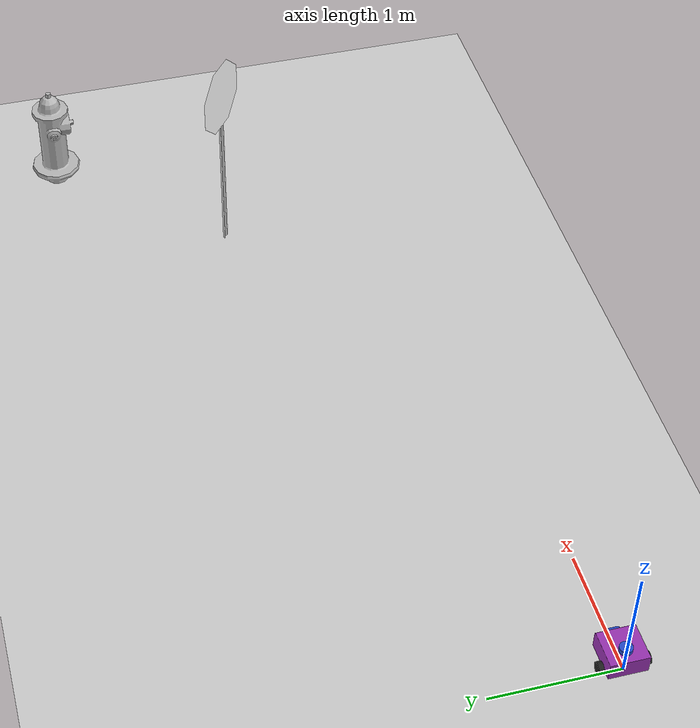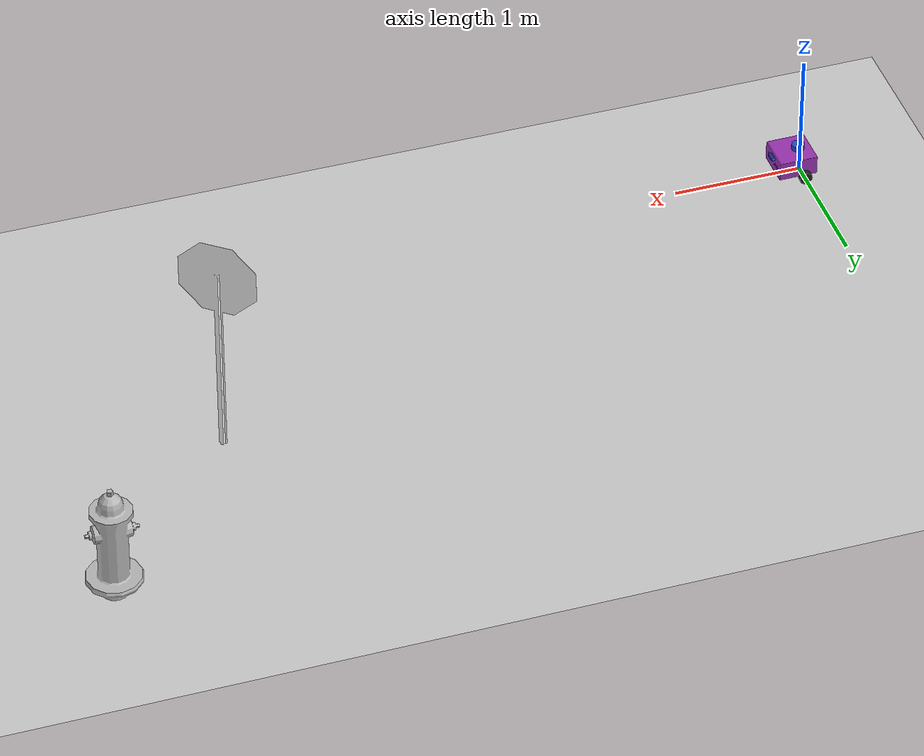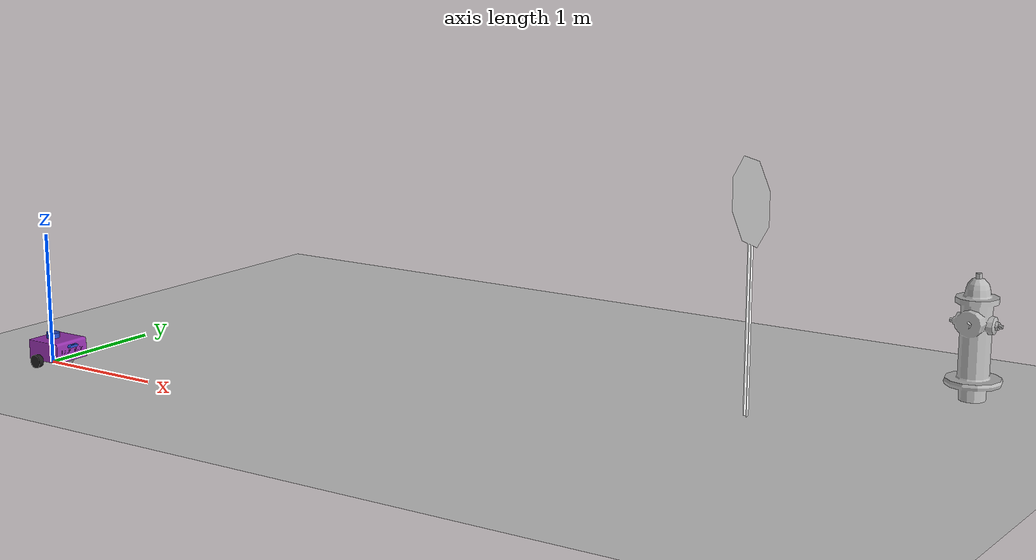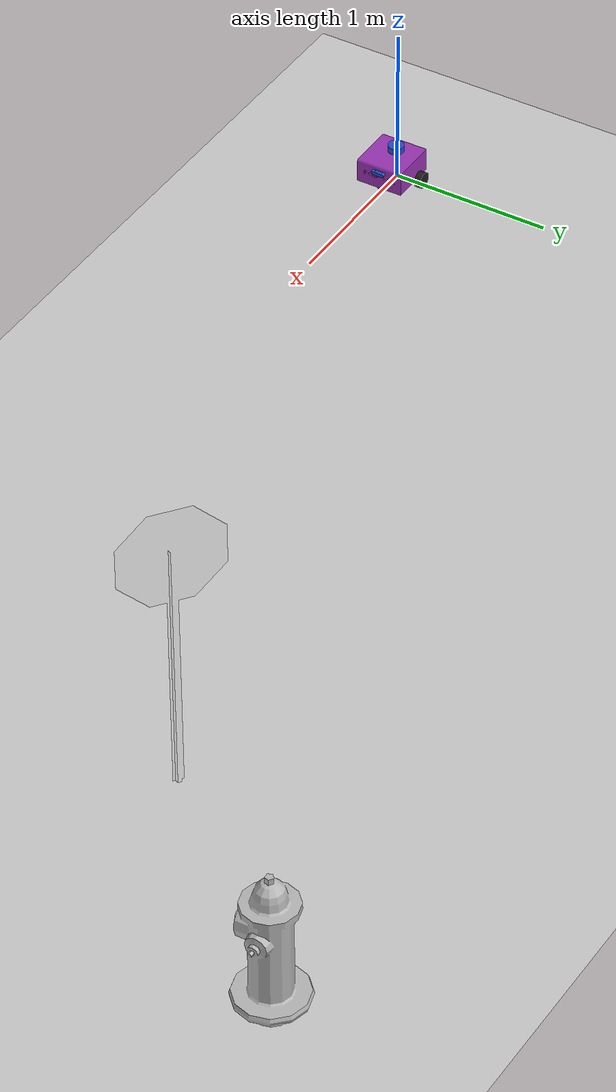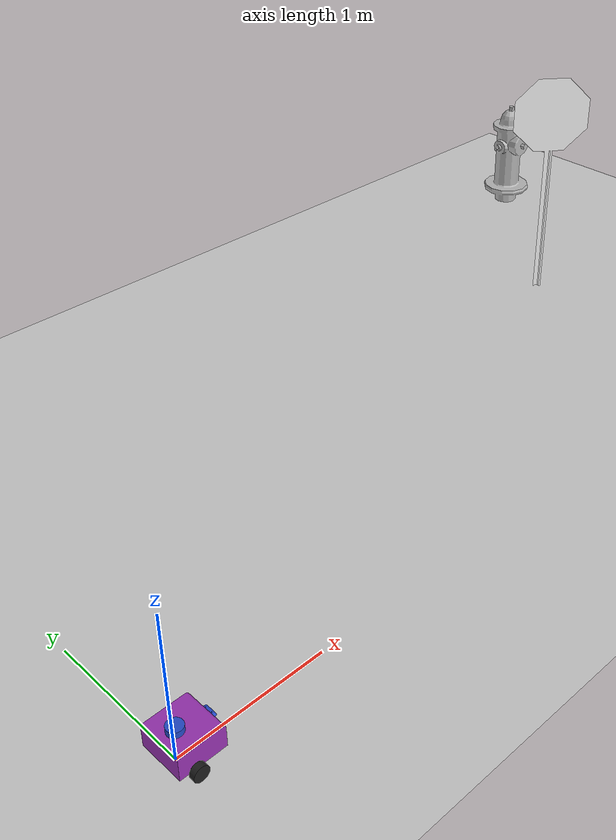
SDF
<sdf version="1.7">
 <world name="default">
  <light name="sun" type="directional">
   <pose>0 0 10 0 -0 0</pose>
   <diffuse>0.8 0.8 0.8 1</diffuse>
   <specular>0.2 0.2 0.2 1</specular>
   <attenuation>
    <range>1000</range>
    <constant>0.9</constant>
    <linear>0.01</linear>
    <quadratic>0.001</quadratic>
   </attenuation>
   <direction>-0.5 0.1 -0.9</direction>
   <spot><inner_angle>0</inner_angle><outer_angle>0</outer_angle><falloff>0</falloff></spot>
  </light>
  <model name="ground_plane">
   <static>1</static>
   <link name="link">
    <collision name="collision">
     <geometry><plane><normal>0 0 1</normal><size>100 100</size></plane></geometry>
     <surface>
      <contact><collide_bitmask>65535</collide_bitmask></contact>
      <friction><ode><mu>100</mu><mu2>50</mu2></ode></friction>
     </surface>
    </collision>
    <visual name="visual">
     <cast_shadows>0</cast_shadows>
     <geometry><plane><normal>0 0 1</normal><size>100 100</size></plane></geometry>
     <material>
      <script><uri>file://media/materials/scripts/gazebo.material</uri><name>Gazebo/Grey</name></script>
     </material>
    </visual>
   </link>
  </model>
  <gravity>0 0 -9.8</gravity>
  <magnetic_field>6e-06 2.3e-05 -4.2e-05</magnetic_field>
  <atmosphere type="adiabatic"/>
  <physics type="ode">
   <max_step_size>0.001</max_step_size>
   <real_time_factor>1</real_time_factor>
   <real_time_update_rate>1000</real_time_update_rate>
  </physics>
  <scene><ambient>0.4 0.4 0.4 1</ambient><background>0.7 0.7 0.7 1</background><shadows>1</shadows></scene>
  <spherical_coordinates>
   <surface_model>EARTH_WGS84</surface_model>
   <latitude_deg>0</latitude_deg>
   <longitude_deg>0</longitude_deg>
   <elevation>0</elevation>
   <heading_deg>0</heading_deg>
  </spherical_coordinates>
  <audio><device>default</device></audio>
  <model name="pathfinder">
   <link name="base_link">
    <inertial>
     <pose>0.075 0 0.080625 0 -0 0</pose>
     <mass>0.8</mass>
     <inertia>
      <ixx>0.00643823</ixx>
      <ixy>0</ixy>
      <ixz>0.0008625</ixz>
      <iyy>0.00949594</iyy>
      <iyz>0</iyz>
      <izz>0.0109177</izz>
     </inertia>
    </inertial>
    <collision name="base_link_fixed_joint_lump__chassis_collision">
     <pose>0.05 0 0.075 0 -0 0</pose>
     <geometry><box><size>0.3 0.3 0.15</size></box></geometry>
    </collision>
    <collision name="base_link_fixed_joint_lump__caster_wheel_collision_1">
     <pose>0.14 0 0 0 -0 0</pose>
     <geometry><sphere><radius>0.05</radius></sphere></geometry>
     <surface><friction><ode><mu>0.001</mu><mu2>0.001</mu2></ode></friction></surface>
    </collision>
    <collision name="base_link_fixed_joint_lump__camera_link_collision_2">
     <pose>0.21 0 0.1 0 -0 0</pose>
     <geometry><box><size>0.025 0.09 0.025</size></box></geometry>
    </collision>
    <collision name="base_link_fixed_joint_lump__laser_frame_collision_3">
     <pose>0 0 0.17 0 -0 0</pose>
     <geometry><cylinder><length>0.04</length><radius>0.05</radius></cylinder></geometry>
    </collision>
    <visual name="base_link_fixed_joint_lump__chassis_visual">
     <pose>0.05 0 0 0 -0 1.5708</pose>
     <geometry>
      <mesh>
       <scale>0.001 0.001 0.001</scale>
       <uri>file:///home/chris/ros2_ws/install/pathfinder/share/pathfinder/description/meshes/pathfinder_chassis.stl</uri>
      </mesh>
     </geometry>
     <material>
      <script><name>Gazebo/Purple</name><uri>file://media/materials/scripts/gazebo.material</uri></script>
     </material>
    </visual>
    <visual name="base_link_fixed_joint_lump__caster_wheel_visual_1">
     <pose>0.14 0 0 0 -0 0</pose>
     <geometry><sphere><radius>0.05</radius></sphere></geometry>
     <material>
      <script><name>Gazebo/Grey</name><uri>file://media/materials/scripts/gazebo.material</uri></script>
     </material>
    </visual>
    <visual name="base_link_fixed_joint_lump__camera_link_visual_2">
     <pose>0.21 0 0.1 0 0 -1.5708</pose>
     <geometry>
      <mesh>
       <scale>0.001 0.001 0.001</scale>
       <uri>file:///home/chris/ros2_ws/install/pathfinder/share/pathfinder/description/meshes/intel_realsense_D435.stl</uri>
      </mesh>
     </geometry>
     <material>
      <script><name>Gazebo/Blue</name><uri>file://media/materials/scripts/gazebo.material</uri></script>
     </material>
    </visual>
    <visual name="base_link_fixed_joint_lump__laser_frame_visual_3">
     <pose>0 0 0.17 0 -0 0</pose>
     <geometry><cylinder><length>0.04</length><radius>0.05</radius></cylinder></geometry>
     <material>
      <script><name>Gazebo/Blue</name><uri>file://media/materials/scripts/gazebo.material</uri></script>
     </material>
    </visual>
    <sensor name="camera" type="depth">
     <visualize>0</visualize>
     <update_rate>15</update_rate>
     <camera>
      <image><format>B8G8R8</format><width>640</width><height>480</height></image>
      <clip><near>0.28</near><far>10</far></clip>
      <horizontal_fov>1.047</horizontal_fov>
     </camera>
     <plugin name="camera_controller" filename="libgazebo_ros_camera.so">
      <frame_name>camera_link_optical</frame_name>
      <min_depth>0.28</min_depth>
      <max_depth>6.0</max_depth>
     </plugin>
     <pose>0.21 0 0.1 0 -0 0</pose>
    </sensor>
    <sensor name="laser" type="ray">
     <visualize>0</visualize>
     <update_rate>20</update_rate>
     <ray>
      <scan>
       <horizontal>
        <samples>360</samples>
        <min_angle>-3.14</min_angle>
        <max_angle>3.14</max_angle>
        <resolution>1</resolution>
       </horizontal>
       <vertical><samples>1</samples><min_angle>0</min_angle><max_angle>0</max_angle></vertical>
      </scan>
      <range><min>0.3</min><max>12</max></range>
     </ray>
     <plugin name="laser_controller" filename="libgazebo_ros_ray_sensor.so">
      <ros><remapping>~/out:=scan</remapping></ros>
      <output_type>sensor_msgs/LaserScan</output_type>
      <frame_name>laser_frame</frame_name>
     </plugin>
     <pose>0 0 0.17 0 -0 0</pose>
    </sensor>
   </link>
   <joint name="left_wheel_joint" type="revolute">
    <pose relative_to="base_link">0 0.175 0 -1.5708 0 0</pose>
    <parent>base_link</parent>
    <child>left_wheel</child>
    <axis>
     <xyz>0 0 1</xyz>
     <limit><lower>-1e+16</lower><upper>1e+16</upper></limit>
     <dynamics><spring_reference>0</spring_reference><spring_stiffness>0</spring_stiffness></dynamics>
    </axis>
   </joint>
   <link name="left_wheel">
    <pose relative_to="left_wheel_joint">0 0 0 0 -0 0</pose>
    <inertial>
     <mass>0.1</mass>
     <inertia>
      <ixx>7.58333e-05</ixx>
      <ixy>0</ixy>
      <ixz>0</ixz>
      <iyy>7.58333e-05</iyy>
      <iyz>0</iyz>
      <izz>0.000125</izz>
     </inertia>
    </inertial>
    <collision name="left_wheel_collision">
     <geometry><cylinder><length>0.04</length><radius>0.05</radius></cylinder></geometry>
    </collision>
    <visual name="left_wheel_visual">
     <geometry><cylinder><length>0.04</length><radius>0.05</radius></cylinder></geometry>
     <material>
      <script><name>Gazebo/Black</name><uri>file://media/materials/scripts/gazebo.material</uri></script>
     </material>
    </visual>
   </link>
   <joint name="right_wheel_joint" type="revolute">
    <pose relative_to="base_link">0 -0.175 0 1.5708 -0 0</pose>
    <parent>base_link</parent>
    <child>right_wheel</child>
    <axis>
     <xyz>0 0 -1</xyz>
     <limit><lower>-1e+16</lower><upper>1e+16</upper></limit>
     <dynamics><spring_reference>0</spring_reference><spring_stiffness>0</spring_stiffness></dynamics>
    </axis>
   </joint>
   <link name="right_wheel">
    <pose relative_to="right_wheel_joint">0 0 0 0 -0 0</pose>
    <inertial>
     <mass>0.1</mass>
     <inertia>
      <ixx>7.58333e-05</ixx>
      <ixy>0</ixy>
      <ixz>0</ixz>
      <iyy>7.58333e-05</iyy>
      <iyz>0</iyz>
      <izz>0.000125</izz>
     </inertia>
    </inertial>
    <collision name="right_wheel_collision">
     <geometry><cylinder><length>0.04</length><radius>0.05</radius></cylinder></geometry>
    </collision>
    <visual name="right_wheel_visual">
     <geometry><cylinder><length>0.04</length><radius>0.05</radius></cylinder></geometry>
     <material>
      <script><name>Gazebo/Black</name><uri>file://media/materials/scripts/gazebo.material</uri></script>
     </material>
    </visual>
   </link>
   <static>0</static>
   <plugin name="diff_drive" filename="libgazebo_ros_diff_drive.so">
    <left_joint>left_wheel_joint</left_joint>
    <right_joint>right_wheel_joint</right_joint>
    <wheel_separation>0.35</wheel_separation>
    <wheel_diameter>0.1</wheel_diameter>
    <max_wheel_torque>180</max_wheel_torque>
    <max_wheel_acceleration>8.0</max_wheel_acceleration>
    <odometry_frame>odom</odometry_frame>
    <robot_base_frame>base_link</robot_base_frame>
    <publish_odom>1</publish_odom>
    <publish_odom_tf>1</publish_odom_tf>
    <publish_wheel_tf>1</publish_wheel_tf>
   </plugin>
   <pose>0.018254 0.000147 0.05 0 2e-06 0.003046</pose>
  </model>
  <model name="Stop Sign">
   <static>1</static>
   <link name="link">
    <collision name="collision">
     <geometry><mesh><uri>model://stop_sign/meshes/stop_sign.dae</uri></mesh></geometry>
    </collision>
    <visual name="visual">
     <geometry><mesh><uri>model://stop_sign/meshes/stop_sign.dae</uri></mesh></geometry>
     <material>
      <script>
       <uri>model://stop_sign/materials/scripts</uri>
       <uri>model://stop_sign/materials/textures</uri>
       <name>StopSign/Diffuse</name>
      </script>
     </material>
    </visual>
   </link>
   <pose>5.07791 1.70588 0 0 0 -0.665312</pose>
  </model>
  <model name="fire_hydrant">
   <static>1</static>
   <link name="link">
    <collision name="collision">
     <geometry><mesh><uri>model://fire_hydrant/meshes/fire_hydrant.dae</uri></mesh></geometry>
    </collision>
    <visual name="visual">
     <geometry><mesh><uri>model://fire_hydrant/meshes/fire_hydrant.dae</uri></mesh></geometry>
    </visual>
   </link>
   <pose>6.2339 2.98566 0 0 -0 0</pose>
  </model>
 </world>
</sdf>
